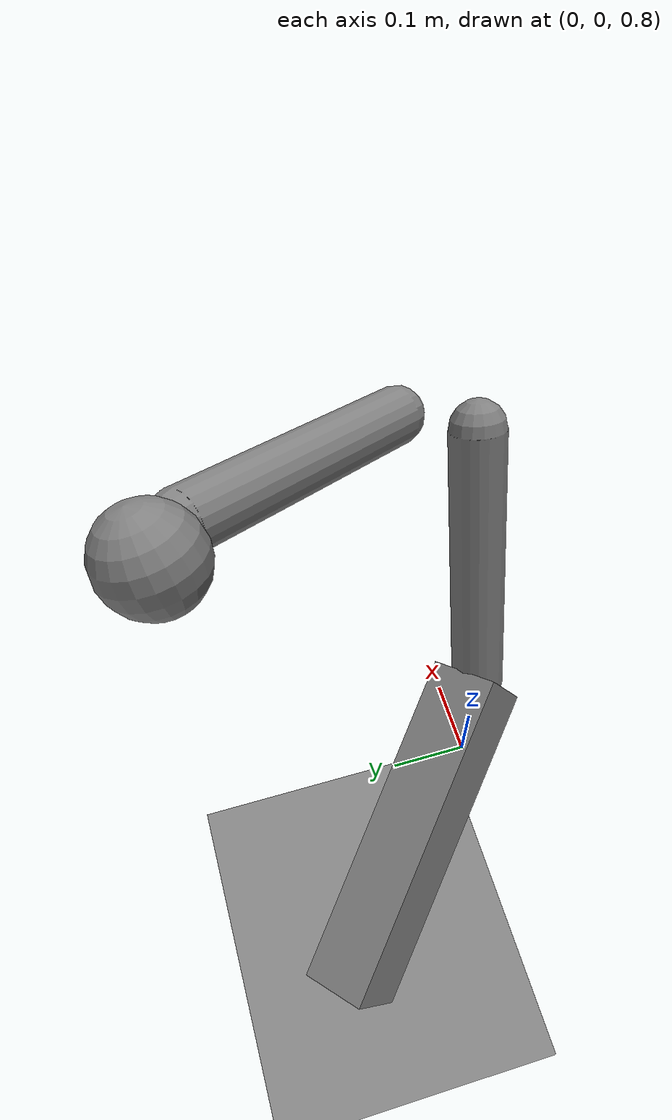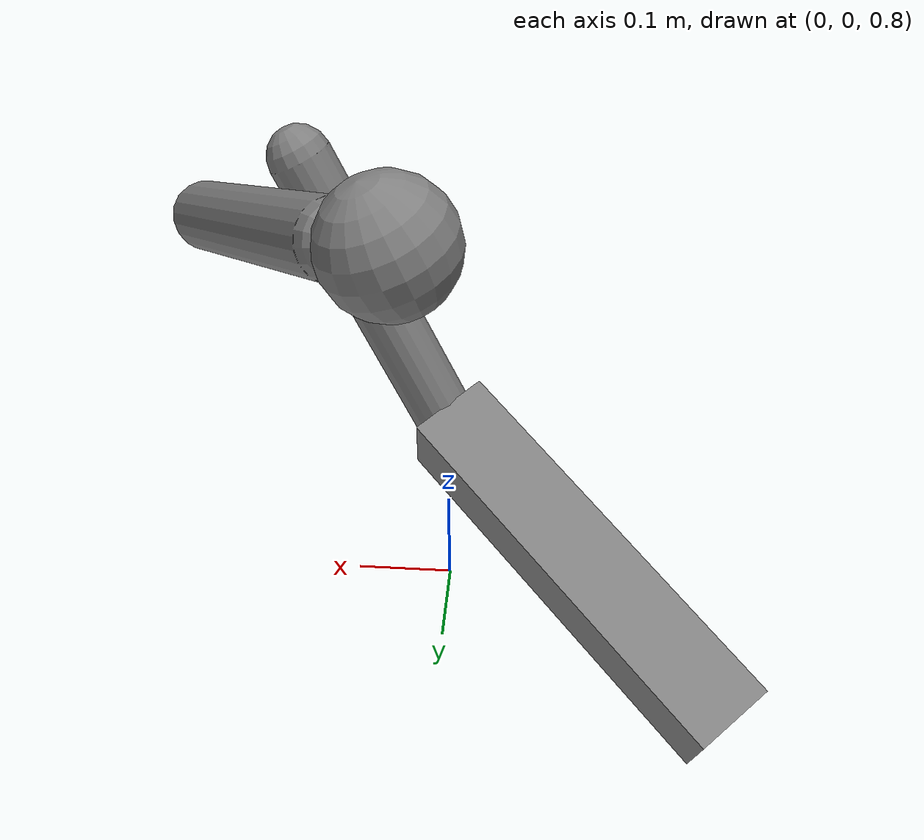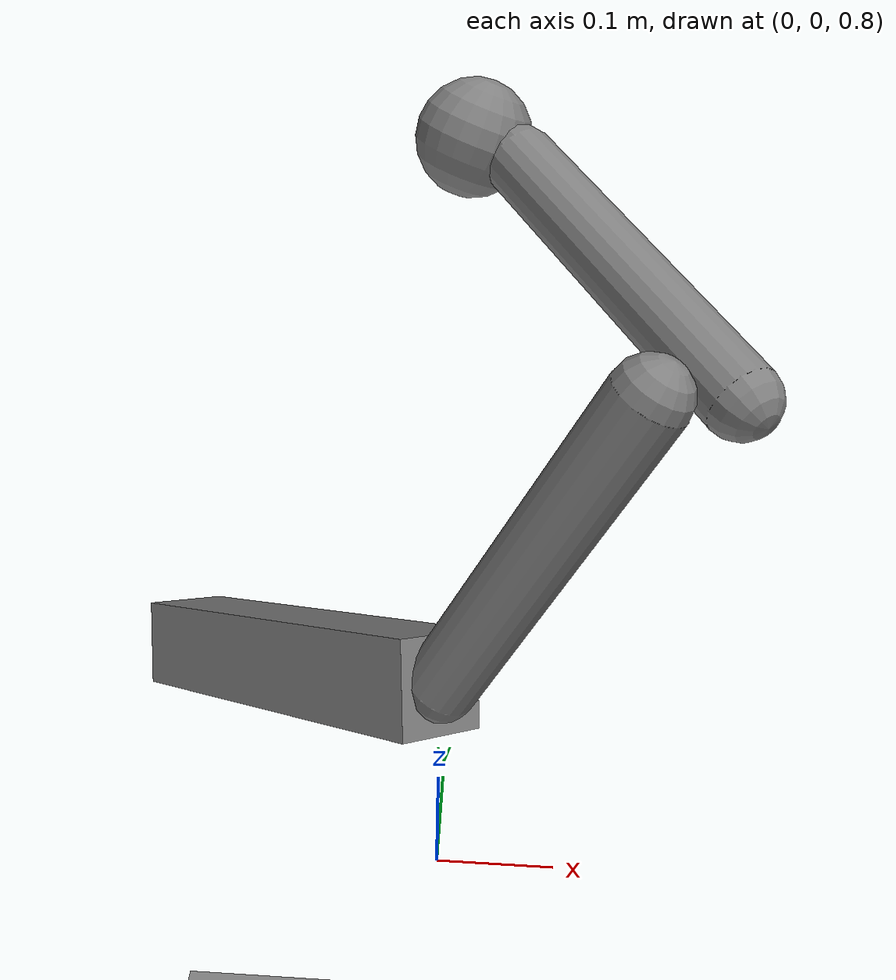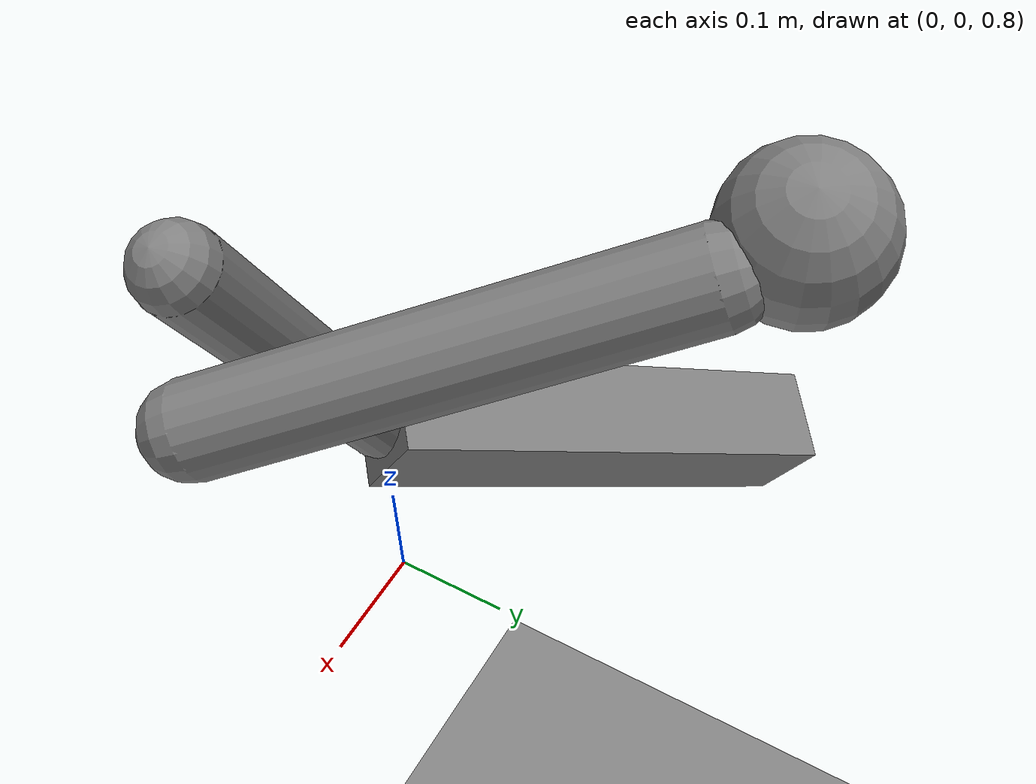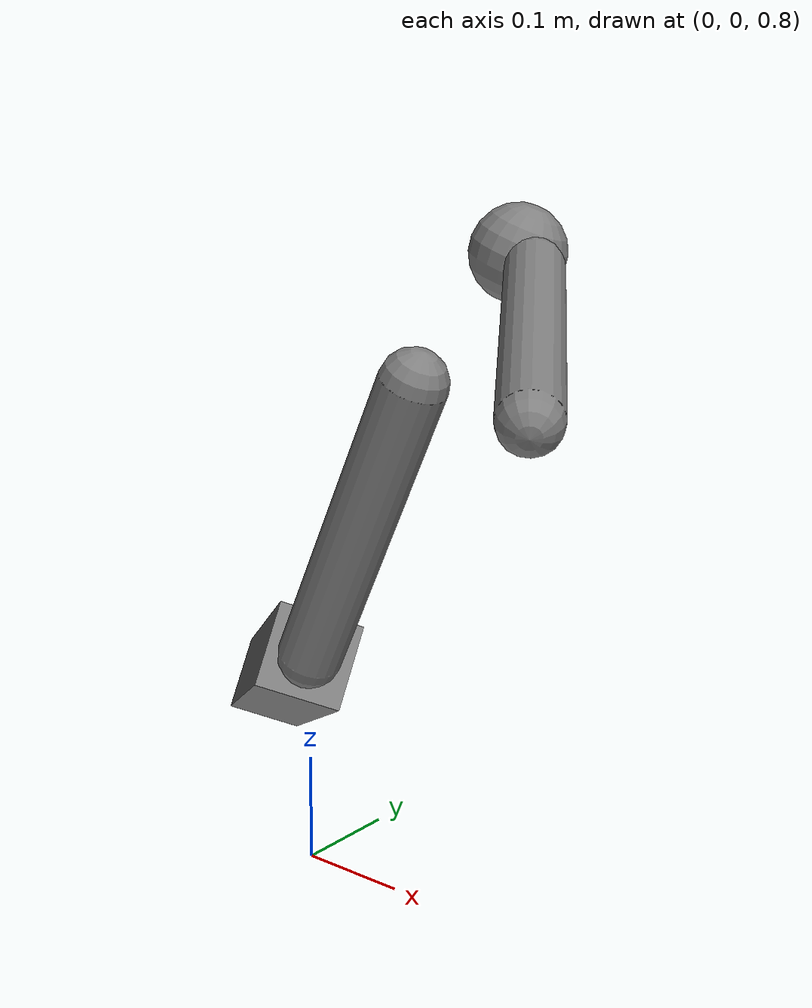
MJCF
<!-- Copyright 2026 -- CONTRIBUTORS. See LICENSE. -->
<mujoco model="features">
  <compiler angle="radian" eulerseq="XYZ"/>
  <option timestep="0.004" gravity="0 0 -9.8" cone="elliptic" solver="PGS"
          iterations="50" tolerance="1e-10"/>
  <default>
    <geom friction="0.8" solref="0.01 0.9"/>
    <joint damping="0.5" armature="0.02"/>
    <default class="limb">
      <geom type="capsule" size="0.03" condim="1" solimp="0.8 0.9"/>
      <joint stiffness="3" range="-1 1" springref="0.1"/>
      <default class="stiff">
        <joint stiffness="9"/>
      </default>
    </default>
  </default>
  <worldbody>
    <geom name="ground" type="plane" size="0 0 1" contype="2" conaffinity="3"/>
    <body name="base" pos="0 0 1" childclass="limb" quat="0.9 0.1 0.2 0.3">
      <joint name="slide" type="slide" axis="0 0 2" range="-0.5 0.5"/>
      <inertial pos="0 0 0.1" mass="2" diaginertia="0.1 0.2 0.25"/>
      <geom name="trunk" fromto="0 0 0 0 0 0.3"/>
      <body name="arm" pos="0.1 0 0.3" xyaxes="0 1 0 -1 0 0">
        <joint name="ball" type="ball" range="0 1.2"/>
        <geom name="arm" fromto="0 0 0 0.3 0 0" friction="0.5 0.01"/>
        <body name="hand" pos="0.3 0 0" euler="0.1 0.2 0.3">
          <joint name="wrist" class="stiff" axis="1 1 0"/>
          <inertial pos="0.05 0 0" mass="0.3"
                    fullinertia="0.004 0.003 0.002 0.0005 0.0002 0.0001"/>
          <geom name="hand" type="sphere" size="0.05" pos="0.05 0 0" class="main"/>
        </body>
      </body>
      <body name="leg" pos="0 0 0" zaxis="0 1 -1">
        <joint name="hip" axis="0 1 0" ref="0.2" limited="false"/>
        <geom name="leg" type="box" fromto="0 0 0 0 0 0.4" size="0.04 0.05"/>
      </body>
    </body>
  </worldbody>
</mujoco>
